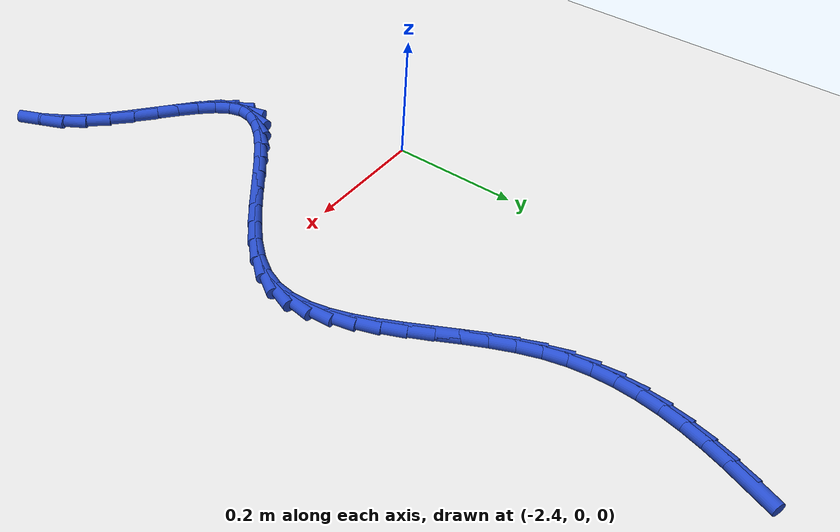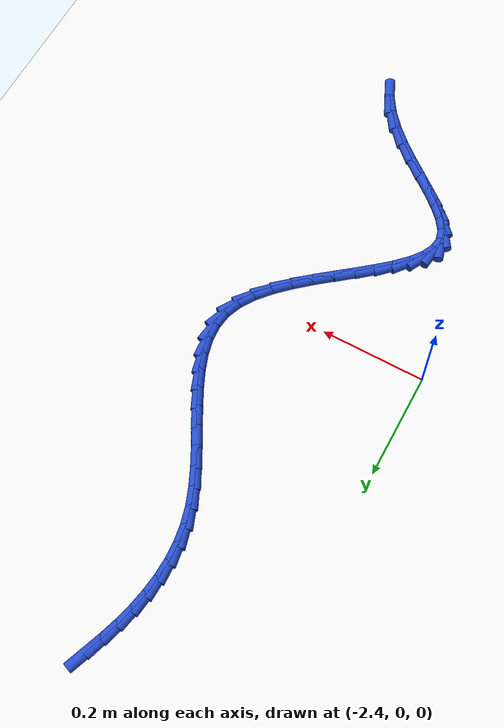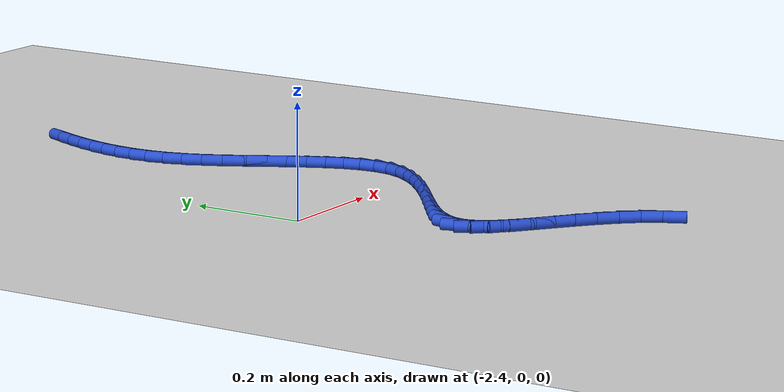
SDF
<sdf version="1.6">
 <world name="default">
  <model name="ground_plane">
   <static>1</static>
   <link name="link">
    <collision name="collision">
     <geometry><plane><normal>0 0 1</normal><size>100 100</size></plane></geometry>
     <surface><friction><ode><mu>100</mu><mu2>50</mu2></ode></friction></surface>
    </collision>
    <visual name="visual">
     <cast_shadows>0</cast_shadows>
     <geometry><plane><normal>0 0 1</normal><size>100 100</size></plane></geometry>
     <material>
      <script><uri>file://media/materials/scripts/gazebo.material</uri><name>Gazebo/WhiteGlow</name></script>
     </material>
    </visual>
   </link>
  </model>
  <model name="line">
   <link name="link_112">
    <pose>-2.125810214793833 0.6925735202703571 0.01 0 1.57 1.2053645450298898</pose>
    <collision name="collision">
     <geometry><cylinder><radius>0.01</radius><length>0.08</length></cylinder></geometry>
    </collision>
    <visual name="visual">
     <material>
      <script><name>Gazebo/Blue</name><uri>file://media/materials/scripts/gazebo.material</uri></script>
     </material>
     <geometry><cylinder><radius>0.01</radius><length>0.08</length></cylinder></geometry>
    </visual>
   </link>
   <link name="link_113">
    <pose>-2.1380580388001436 0.6605628542981499 0.01 0 1.57 1.2504637489888895</pose>
    <collision name="collision">
     <geometry><cylinder><radius>0.01</radius><length>0.08</length></cylinder></geometry>
    </collision>
    <visual name="visual">
     <material>
      <script><name>Gazebo/Blue</name><uri>file://media/materials/scripts/gazebo.material</uri></script>
     </material>
     <geometry><cylinder><radius>0.01</radius><length>0.08</length></cylinder></geometry>
    </visual>
   </link>
   <link name="link_114">
    <pose>-2.148682820326034 0.6285372090819393 0.01 0 1.57 1.3052228600985274</pose>
    <collision name="collision">
     <geometry><cylinder><radius>0.01</radius><length>0.08</length></cylinder></geometry>
    </collision>
    <visual name="visual">
     <material>
      <script><name>Gazebo/Blue</name><uri>file://media/materials/scripts/gazebo.material</uri></script>
     </material>
     <geometry><cylinder><radius>0.01</radius><length>0.08</length></cylinder></geometry>
    </visual>
   </link>
   <link name="link_115">
    <pose>-2.1574005929396463 0.5964863802810546 0.01 0 1.57 1.3701198936326948</pose>
    <collision name="collision">
     <geometry><cylinder><radius>0.01</radius><length>0.08</length></cylinder></geometry>
    </collision>
    <visual name="visual">
     <material>
      <script><name>Gazebo/Blue</name><uri>file://media/materials/scripts/gazebo.material</uri></script>
     </material>
     <geometry><cylinder><radius>0.01</radius><length>0.08</length></cylinder></geometry>
    </visual>
   </link>
   <link name="link_116">
    <pose>-2.163927390209122 0.5644001635548266 0.01 0 1.57 1.4453573491538294</pose>
    <collision name="collision">
     <geometry><cylinder><radius>0.01</radius><length>0.08</length></cylinder></geometry>
    </collision>
    <visual name="visual">
     <material>
      <script><name>Gazebo/Blue</name><uri>file://media/materials/scripts/gazebo.material</uri></script>
     </material>
     <geometry><cylinder><radius>0.01</radius><length>0.08</length></cylinder></geometry>
    </visual>
   </link>
   <link name="link_117">
    <pose>-2.1679792457026035 0.5322683545625844 0.01 0 1.57 1.5306488066741453</pose>
    <collision name="collision">
     <geometry><cylinder><radius>0.01</radius><length>0.08</length></cylinder></geometry>
    </collision>
    <visual name="visual">
     <material>
      <script><name>Gazebo/Blue</name><uri>file://media/materials/scripts/gazebo.material</uri></script>
     </material>
     <geometry><cylinder><radius>0.01</radius><length>0.08</length></cylinder></geometry>
    </visual>
   </link>
   <link name="link_118">
    <pose>-2.1692721929882333 0.5000807489636577 0.01 0 1.57 -1.5165942228966423</pose>
    <collision name="collision">
     <geometry><cylinder><radius>0.01</radius><length>0.08</length></cylinder></geometry>
    </collision>
    <visual name="visual">
     <material>
      <script><name>Gazebo/Blue</name><uri>file://media/materials/scripts/gazebo.material</uri></script>
     </material>
     <geometry><cylinder><radius>0.01</radius><length>0.08</length></cylinder></geometry>
    </visual>
   </link>
   <link name="link_119">
    <pose>-2.1675222656341546 0.46782714241737705 0.01 0 1.57 -1.4150377191491739</pose>
    <collision name="collision">
     <geometry><cylinder><radius>0.01</radius><length>0.08</length></cylinder></geometry>
    </collision>
    <visual name="visual">
     <material>
      <script><name>Gazebo/Blue</name><uri>file://media/materials/scripts/gazebo.material</uri></script>
     </material>
     <geometry><cylinder><radius>0.01</radius><length>0.08</length></cylinder></geometry>
    </visual>
   </link>
   <link name="link_120">
    <pose>-2.1624454972085085 0.4354973305830718 0.01 0 1.57 -1.3089487180596024</pose>
    <collision name="collision">
     <geometry><cylinder><radius>0.01</radius><length>0.08</length></cylinder></geometry>
    </collision>
    <visual name="visual">
     <material>
      <script><name>Gazebo/Blue</name><uri>file://media/materials/scripts/gazebo.material</uri></script>
     </material>
     <geometry><cylinder><radius>0.01</radius><length>0.08</length></cylinder></geometry>
    </visual>
   </link>
   <link name="link_121">
    <pose>-2.153757921458329 0.4030811091317704 0.01 0 1.57 -1.2073230265697388</pose>
    <collision name="collision">
     <geometry><cylinder><radius>0.01</radius><length>0.08</length></cylinder></geometry>
    </collision>
    <visual name="visual">
     <material>
      <script><name>Gazebo/Blue</name><uri>file://media/materials/scripts/gazebo.material</uri></script>
     </material>
     <geometry><cylinder><radius>0.01</radius><length>0.08</length></cylinder></geometry>
    </visual>
   </link>
   <link name="link_122">
    <pose>-2.141396394843658 0.37058271440942314 0.01 0 1.57 -1.1325585720755107</pose>
    <collision name="collision">
     <geometry><cylinder><radius>0.01</radius><length>0.08</length></cylinder></geometry>
    </collision>
    <visual name="visual">
     <material>
      <script><name>Gazebo/Blue</name><uri>file://media/materials/scripts/gazebo.material</uri></script>
     </material>
     <geometry><cylinder><radius>0.01</radius><length>0.08</length></cylinder></geometry>
    </visual>
   </link>
   <link name="link_123">
    <pose>-2.1261564810627647 0.33806253781918105 0.01 0 1.57 -1.0856997703306022</pose>
    <collision name="collision">
     <geometry><cylinder><radius>0.01</radius><length>0.08</length></cylinder></geometry>
    </collision>
    <visual name="visual">
     <material>
      <script><name>Gazebo/Blue</name><uri>file://media/materials/scripts/gazebo.material</uri></script>
     </material>
     <geometry><cylinder><radius>0.01</radius><length>0.08</length></cylinder></geometry>
    </visual>
   </link>
   <link name="link_124">
    <pose>-2.10904244483593 0.30559461874258487 0.01 0 1.57 -1.0633121611287222</pose>
    <collision name="collision">
     <geometry><cylinder><radius>0.01</radius><length>0.08</length></cylinder></geometry>
    </collision>
    <visual name="visual">
     <material>
      <script><name>Gazebo/Blue</name><uri>file://media/materials/scripts/gazebo.material</uri></script>
     </material>
     <geometry><cylinder><radius>0.01</radius><length>0.08</length></cylinder></geometry>
    </visual>
   </link>
   <link name="link_125">
    <pose>-2.0910585508834334 0.2732529965611735 0.01 0 1.57 -1.0638591007023024</pose>
    <collision name="collision">
     <geometry><cylinder><radius>0.01</radius><length>0.08</length></cylinder></geometry>
    </collision>
    <visual name="visual">
     <material>
      <script><name>Gazebo/Blue</name><uri>file://media/materials/scripts/gazebo.material</uri></script>
     </material>
     <geometry><cylinder><radius>0.01</radius><length>0.08</length></cylinder></geometry>
    </visual>
   </link>
   <link name="link_126">
    <pose>-2.073209063925557 0.2411117106564865 0.01 0 1.57 -1.08782453666975</pose>
    <collision name="collision">
     <geometry><cylinder><radius>0.01</radius><length>0.08</length></cylinder></geometry>
    </collision>
    <visual name="visual">
     <material>
      <script><name>Gazebo/Blue</name><uri>file://media/materials/scripts/gazebo.material</uri></script>
     </material>
     <geometry><cylinder><radius>0.01</radius><length>0.08</length></cylinder></geometry>
    </visual>
   </link>
   <link name="link_127">
    <pose>-2.056498248682581 0.20924480041006419 0.01 0 1.57 -1.1378425299334998</pose>
    <collision name="collision">
     <geometry><cylinder><radius>0.01</radius><length>0.08</length></cylinder></geometry>
    </collision>
    <visual name="visual">
     <material>
      <script><name>Gazebo/Blue</name><uri>file://media/materials/scripts/gazebo.material</uri></script>
     </material>
     <geometry><cylinder><radius>0.01</radius><length>0.08</length></cylinder></geometry>
    </visual>
   </link>
   <link name="link_128">
    <pose>-2.0419303698747857 0.17772630520344573 0.01 0 1.57 -1.2188188202207637</pose>
    <collision name="collision">
     <geometry><cylinder><radius>0.01</radius><length>0.08</length></cylinder></geometry>
    </collision>
    <visual name="visual">
     <material>
      <script><name>Gazebo/Blue</name><uri>file://media/materials/scripts/gazebo.material</uri></script>
     </material>
     <geometry><cylinder><radius>0.01</radius><length>0.08</length></cylinder></geometry>
    </visual>
   </link>
   <link name="link_129">
    <pose>-2.0305096922224504 0.14663026441817098 0.01 0 1.57 -1.3375602442347507</pose>
    <collision name="collision">
     <geometry><cylinder><radius>0.01</radius><length>0.08</length></cylinder></geometry>
    </collision>
    <visual name="visual">
     <material>
      <script><name>Gazebo/Blue</name><uri>file://media/materials/scripts/gazebo.material</uri></script>
     </material>
     <geometry><cylinder><radius>0.01</radius><length>0.08</length></cylinder></geometry>
    </visual>
   </link>
   <link name="link_130">
    <pose>-2.023240480445857 0.11603071743577939 0.01 0 1.57 -1.5005308894874743</pose>
    <collision name="collision">
     <geometry><cylinder><radius>0.01</radius><length>0.08</length></cylinder></geometry>
    </collision>
    <visual name="visual">
     <material>
      <script><name>Gazebo/Blue</name><uri>file://media/materials/scripts/gazebo.material</uri></script>
     </material>
     <geometry><cylinder><radius>0.01</radius><length>0.08</length></cylinder></geometry>
    </visual>
   </link>
   <link name="link_131">
    <pose>-2.0211269992652854 0.08600170363781065 0.01 0 1.57 1.4339476434542089</pose>
    <collision name="collision">
     <geometry><cylinder><radius>0.01</radius><length>0.08</length></cylinder></geometry>
    </collision>
    <visual name="visual">
     <material>
      <script><name>Gazebo/Blue</name><uri>file://media/materials/scripts/gazebo.material</uri></script>
     </material>
     <geometry><cylinder><radius>0.01</radius><length>0.08</length></cylinder></geometry>
    </visual>
   </link>
   <link name="link_132">
    <pose>-2.0251735134010156 0.056617262405804454 0.01 0 1.57 1.2005054383660356</pose>
    <collision name="collision">
     <geometry><cylinder><radius>0.01</radius><length>0.08</length></cylinder></geometry>
    </collision>
    <visual name="visual">
     <material>
      <script><name>Gazebo/Blue</name><uri>file://media/materials/scripts/gazebo.material</uri></script>
     </material>
     <geometry><cylinder><radius>0.01</radius><length>0.08</length></cylinder></geometry>
    </visual>
   </link>
   <link name="link_133">
    <pose>-2.0363028904663025 0.02794791993296475 0.01 0 1.57 1.0016085098390437</pose>
    <collision name="collision">
     <geometry><cylinder><radius>0.01</radius><length>0.08</length></cylinder></geometry>
    </collision>
    <visual name="visual">
     <material>
      <script><name>Gazebo/Blue</name><uri>file://media/materials/scripts/gazebo.material</uri></script>
     </material>
     <geometry><cylinder><radius>0.01</radius><length>0.08</length></cylinder></geometry>
    </visual>
   </link>
   <link name="link_134">
    <pose>-2.0541783286271 9.833698797589996e-06 0.01 0 1.57 0.863224405399135</pose>
    <collision name="collision">
     <geometry><cylinder><radius>0.01</radius><length>0.08</length></cylinder></geometry>
    </collision>
    <visual name="visual">
     <material>
      <script><name>Gazebo/Blue</name><uri>file://media/materials/scripts/gazebo.material</uri></script>
     </material>
     <geometry><cylinder><radius>0.01</radius><length>0.08</length></cylinder></geometry>
    </visual>
   </link>
   <link name="link_135">
    <pose>-2.0774715353807562 -0.02722363264093319 0.01 0 1.57 0.7705743533704973</pose>
    <collision name="collision">
     <geometry><cylinder><radius>0.01</radius><length>0.08</length></cylinder></geometry>
    </collision>
    <visual name="visual">
     <material>
      <script><name>Gazebo/Blue</name><uri>file://media/materials/scripts/gazebo.material</uri></script>
     </material>
     <geometry><cylinder><radius>0.01</radius><length>0.08</length></cylinder></geometry>
    </visual>
   </link>
   <link name="link_136">
    <pose>-2.104827422303368 -0.05378027197178736 0.01 0 1.57 0.7112837981757604</pose>
    <collision name="collision">
     <geometry><cylinder><radius>0.01</radius><length>0.08</length></cylinder></geometry>
    </collision>
    <visual name="visual">
     <material>
      <script><name>Gazebo/Blue</name><uri>file://media/materials/scripts/gazebo.material</uri></script>
     </material>
     <geometry><cylinder><radius>0.01</radius><length>0.08</length></cylinder></geometry>
    </visual>
   </link>
   <link name="link_137">
    <pose>-2.1348909009710324 -0.07968787717932477 0.01 0 1.57 0.6777146610435869</pose>
    <collision name="collision">
     <geometry><cylinder><radius>0.01</radius><length>0.08</length></cylinder></geometry>
    </collision>
    <visual name="visual">
     <material>
      <script><name>Gazebo/Blue</name><uri>file://media/materials/scripts/gazebo.material</uri></script>
     </material>
     <geometry><cylinder><radius>0.01</radius><length>0.08</length></cylinder></geometry>
    </visual>
   </link>
   <link name="link_138">
    <pose>-2.1663068829598453 -0.10497424114910514 0.01 0 1.57 0.6661849399660145</pose>
    <collision name="collision">
     <geometry><cylinder><radius>0.01</radius><length>0.08</length></cylinder></geometry>
    </collision>
    <visual name="visual">
     <material>
      <script><name>Gazebo/Blue</name><uri>file://media/materials/scripts/gazebo.material</uri></script>
     </material>
     <geometry><cylinder><radius>0.01</radius><length>0.08</length></cylinder></geometry>
    </visual>
   </link>
   <link name="link_139">
    <pose>-2.197720279845903 -0.12966715676668825 0.01 0 1.57 0.676416094598652</pose>
    <collision name="collision">
     <geometry><cylinder><radius>0.01</radius><length>0.08</length></cylinder></geometry>
    </collision>
    <visual name="visual">
     <material>
      <script><name>Gazebo/Blue</name><uri>file://media/materials/scripts/gazebo.material</uri></script>
     </material>
     <geometry><cylinder><radius>0.01</radius><length>0.08</length></cylinder></geometry>
    </visual>
   </link>
   <link name="link_140">
    <pose>-2.2277760032053027 -0.15379441691763465 0.01 0 1.57 0.7118341177647236</pose>
    <collision name="collision">
     <geometry><cylinder><radius>0.01</radius><length>0.08</length></cylinder></geometry>
    </collision>
    <visual name="visual">
     <material>
      <script><name>Gazebo/Blue</name><uri>file://media/materials/scripts/gazebo.material</uri></script>
     </material>
     <geometry><cylinder><radius>0.01</radius><length>0.08</length></cylinder></geometry>
    </visual>
   </link>
   <link name="link_141">
    <pose>-2.255118964614139 -0.1773838144875027 0.01 0 1.57 0.7811745766071364</pose>
    <collision name="collision">
     <geometry><cylinder><radius>0.01</radius><length>0.08</length></cylinder></geometry>
    </collision>
    <visual name="visual">
     <material>
      <script><name>Gazebo/Blue</name><uri>file://media/materials/scripts/gazebo.material</uri></script>
     </material>
     <geometry><cylinder><radius>0.01</radius><length>0.08</length></cylinder></geometry>
    </visual>
   </link>
   <link name="link_142">
    <pose>-2.2783940756485093 -0.2004631423618528 0.01 0 1.57 0.9021690833499851</pose>
    <collision name="collision">
     <geometry><cylinder><radius>0.01</radius><length>0.08</length></cylinder></geometry>
    </collision>
    <visual name="visual">
     <material>
      <script><name>Gazebo/Blue</name><uri>file://media/materials/scripts/gazebo.material</uri></script>
     </material>
     <geometry><cylinder><radius>0.01</radius><length>0.08</length></cylinder></geometry>
    </visual>
   </link>
   <link name="link_143">
    <pose>-2.2962462478845094 -0.22306019342624483 0.01 0 1.57 1.1070453405913343</pose>
    <collision name="collision">
     <geometry><cylinder><radius>0.01</radius><length>0.08</length></cylinder></geometry>
    </collision>
    <visual name="visual">
     <material>
      <script><name>Gazebo/Blue</name><uri>file://media/materials/scripts/gazebo.material</uri></script>
     </material>
     <geometry><cylinder><radius>0.01</radius><length>0.08</length></cylinder></geometry>
    </visual>
   </link>
   <link name="link_144">
    <pose>-2.3073203928982364 -0.24520276056623858 0.01 0 1.57 1.4361831367893265</pose>
    <collision name="collision">
     <geometry><cylinder><radius>0.01</radius><length>0.08</length></cylinder></geometry>
    </collision>
    <visual name="visual">
     <material>
      <script><name>Gazebo/Blue</name><uri>file://media/materials/scripts/gazebo.material</uri></script>
     </material>
     <geometry><cylinder><radius>0.01</radius><length>0.08</length></cylinder></geometry>
    </visual>
   </link>
   <link name="link_145">
    <pose>-2.310261422265786 -0.2669186366673938 0.01 0 1.57 -1.2908093699574867</pose>
    <collision name="collision">
     <geometry><cylinder><radius>0.01</radius><length>0.08</length></cylinder></geometry>
    </collision>
    <visual name="visual">
     <material>
      <script><name>Gazebo/Blue</name><uri>file://media/materials/scripts/gazebo.material</uri></script>
     </material>
     <geometry><cylinder><radius>0.01</radius><length>0.08</length></cylinder></geometry>
    </visual>
   </link>
   <link name="link_146">
    <pose>-2.304121513439506 -0.28827185523710114 0.01 0 1.57 -0.98166330257222</pose>
    <collision name="collision">
     <geometry><cylinder><radius>0.01</radius><length>0.08</length></cylinder></geometry>
    </collision>
    <visual name="visual">
     <material>
      <script><name>Gazebo/Blue</name><uri>file://media/materials/scripts/gazebo.material</uri></script>
     </material>
     <geometry><cylinder><radius>0.01</radius><length>0.08</length></cylinder></geometry>
    </visual>
   </link>
   <link name="link_147">
    <pose>-2.2899329574801874 -0.309502650521998 0.01 0 1.57 -0.8043951697061861</pose>
    <collision name="collision">
     <geometry><cylinder><radius>0.01</radius><length>0.08</length></cylinder></geometry>
    </collision>
    <visual name="visual">
     <material>
      <script><name>Gazebo/Blue</name><uri>file://media/materials/scripts/gazebo.material</uri></script>
     </material>
     <geometry><cylinder><radius>0.01</radius><length>0.08</length></cylinder></geometry>
    </visual>
   </link>
   <link name="link_148">
    <pose>-2.2693289640270677 -0.33090472960851175 0.01 0 1.57 -0.7110641143496199</pose>
    <collision name="collision">
     <geometry><cylinder><radius>0.01</radius><length>0.08</length></cylinder></geometry>
    </collision>
    <visual name="visual">
     <material>
      <script><name>Gazebo/Blue</name><uri>file://media/materials/scripts/gazebo.material</uri></script>
     </material>
     <geometry><cylinder><radius>0.01</radius><length>0.08</length></cylinder></geometry>
    </visual>
   </link>
   <link name="link_149">
    <pose>-2.2439428788206373 -0.35277181169406296 0.01 0 1.57 -0.6704082013106244</pose>
    <collision name="collision">
     <geometry><cylinder><radius>0.01</radius><length>0.08</length></cylinder></geometry>
    </collision>
    <visual name="visual">
     <material>
      <script><name>Gazebo/Blue</name><uri>file://media/materials/scripts/gazebo.material</uri></script>
     </material>
     <geometry><cylinder><radius>0.01</radius><length>0.08</length></cylinder></geometry>
    </visual>
   </link>
   <link name="link_150">
    <pose>-2.2154080476013864 -0.37539761597606996 0.01 0 1.57 -0.6673534745543205</pose>
    <collision name="collision">
     <geometry><cylinder><radius>0.01</radius><length>0.08</length></cylinder></geometry>
    </collision>
    <visual name="visual">
     <material>
      <script><name>Gazebo/Blue</name><uri>file://media/materials/scripts/gazebo.material</uri></script>
     </material>
     <geometry><cylinder><radius>0.01</radius><length>0.08</length></cylinder></geometry>
    </visual>
   </link>
   <link name="link_151">
    <pose>-2.1853578161098057 -0.3990758616519535 0.01 0 1.57 -0.6963299467303892</pose>
    <collision name="collision">
     <geometry><cylinder><radius>0.01</radius><length>0.08</length></cylinder></geometry>
    </collision>
    <visual name="visual">
     <material>
      <script><name>Gazebo/Blue</name><uri>file://media/materials/scripts/gazebo.material</uri></script>
     </material>
     <geometry><cylinder><radius>0.01</radius><length>0.08</length></cylinder></geometry>
    </visual>
   </link>
   <link name="link_152">
    <pose>-2.1554255300863865 -0.42410026791913347 0.01 0 1.57 -0.7577508932567849</pose>
    <collision name="collision">
     <geometry><cylinder><radius>0.01</radius><length>0.08</length></cylinder></geometry>
    </collision>
    <visual name="visual">
     <material>
      <script><name>Gazebo/Blue</name><uri>file://media/materials/scripts/gazebo.material</uri></script>
     </material>
     <geometry><cylinder><radius>0.01</radius><length>0.08</length></cylinder></geometry>
    </visual>
   </link>
   <link name="link_153">
    <pose>-2.1272445352716183 -0.4507645539750296 0.01 0 1.57 -0.8564755501581353</pose>
    <collision name="collision">
     <geometry><cylinder><radius>0.01</radius><length>0.08</length></cylinder></geometry>
    </collision>
    <visual name="visual">
     <material>
      <script><name>Gazebo/Blue</name><uri>file://media/materials/scripts/gazebo.material</uri></script>
     </material>
     <geometry><cylinder><radius>0.01</radius><length>0.08</length></cylinder></geometry>
    </visual>
   </link>
   <link name="link_154">
    <pose>-2.1024481774059915 -0.47936243901706194 0.01 0 1.57 -0.9963291304183169</pose>
    <collision name="collision">
     <geometry><cylinder><radius>0.01</radius><length>0.08</length></cylinder></geometry>
    </collision>
    <visual name="visual">
     <material>
      <script><name>Gazebo/Blue</name><uri>file://media/materials/scripts/gazebo.material</uri></script>
     </material>
     <geometry><cylinder><radius>0.01</radius><length>0.08</length></cylinder></geometry>
    </visual>
   </link>
   <link name="link_155">
    <pose>-2.082525876378465 -0.5101404918635007 0.01 0 1.57 -1.1377965837984547</pose>
    <collision name="collision">
     <geometry><cylinder><radius>0.01</radius><length>0.08</length></cylinder></geometry>
    </collision>
    <visual name="visual">
     <material>
      <script><name>Gazebo/Blue</name><uri>file://media/materials/scripts/gazebo.material</uri></script>
     </material>
     <geometry><cylinder><radius>0.01</radius><length>0.08</length></cylinder></geometry>
    </visual>
   </link>
  </model>
 </world>
</sdf>
